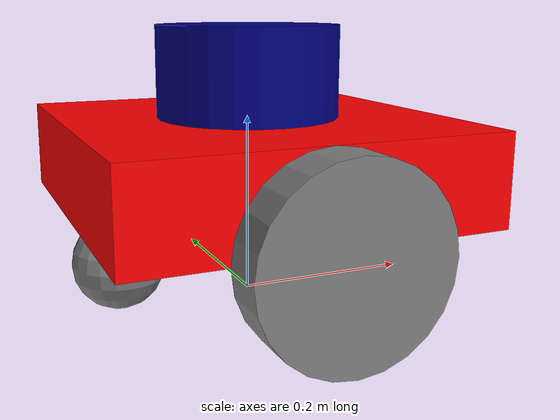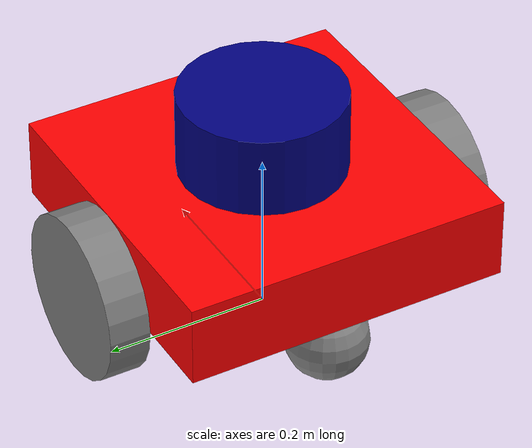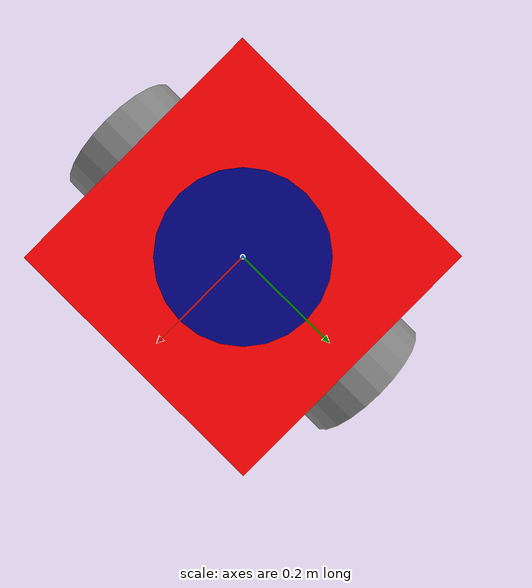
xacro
<?xml version="1.0"?>

<robot name="noisy_boy" xmlns:xacro="http://www.ros.org/wiki/xacro">

    <xacro:arg name="namespace" default=""/>

    <xacro:include filename="noisy_boy_common_properties.xacro"/>
    <xacro:include filename="noisy_boy_base.xacro"/>
    <xacro:include filename="noisy_boy_gazebo.xacro"/>
    <xacro:include filename="noisy_boy_sensors.xacro"/>

</robot>

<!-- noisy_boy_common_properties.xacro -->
<robot xmlns:xacro="http://www.ros.org/wiki/xacro">

    <material name="blue">
        <color rgba="0 0 0.5 1"/>
    </material>

    <material name="grey">
        <color rgba="0.5 0.5 0.5 1"/>
    </material>

    <material name="orange">
        <color rgba="1 0.5 0 1"/>
    </material>

    <material name="yellow">
        <color rgba="1 1 0 1"/>
    </material>

    <material name="red">
        <color rgba="1 0 0 1"/>
    </material>

    <!-- Box -->
    <xacro:macro name="box_inertia" params="m x y z o_xyz o_rpy">
        <inertial>
            <mass value="${m}"/>
            <origin xyz="${o_xyz}" rpy="${o_rpy}"/>
            <inertia ixx="${(m/12) * (y*y + z*z)}" ixy="0" ixz="0"
                     iyy="${(m/12) * (x*x + z*z)}" iyz="0"
                     izz="${(m/12) * (x*x + y*y)}"/>
        </inertial>
    </xacro:macro>

    <!-- Cylinder -->
    <xacro:macro name="cylinder_inertia" params="m r l o_xyz o_rpy">
        <inertial>
            <origin xyz="${o_xyz}" rpy="${o_rpy}"/>
            <mass value="${m}"/>
            <inertia ixx="${(m/12) * ((3 * r * r) + (l * l))}" ixy="0.0" ixz="0.0"
                     iyy="${(m/12) * ((3 * r * r) + (l * l))}" iyz="0.0"
                     izz="${(m * r * r) / 2}"/>
        </inertial>
    </xacro:macro>

    <!-- Sphere -->
    <xacro:macro name="sphere_inertia" params="m r o_xyz o_rpy">
        <inertial>
            <origin xyz="${o_xyz}" rpy="${o_rpy}"/>
            <mass value="${m}"/>
            <inertia ixx="${(2 * m * r * r) / 5}" ixy="0.0" ixz="0.0"
                     iyy="${(2 * m * r * r) / 5}" iyz="0.0"
                     izz="${(2 * m * r * r) / 5}"/>
        </inertial>
    </xacro:macro>

</robot>

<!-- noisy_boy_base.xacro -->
<robot xmlns:xacro="http://www.ros.org/wiki/xacro">

    <xacro:property name="length" value="0.4"/>
    <xacro:property name="width" value="0.4"/>
    <xacro:property name="height" value="0.1"/>

    <xacro:property name="mass" value="2.0"/>
    <xacro:property name="wheel_mass" value="0.5"/>

    <xacro:property name="wheel_radius" value="0.1"/>
    <xacro:property name="wheel_width" value="0.05"/>

    <xacro:property name="caster_wheel_radius" value="0.05"/>

    <!-- BASE -->
    <link name="base_link">
        <visual>
            <geometry>
                <box size="${length} ${width} ${height}"/>
            </geometry>
            <origin xyz="0.0 0.0 ${height/2}" rpy="0 0 0"/>
            <material name="red"/>
        </visual>

        <xacro:box_inertia m="${mass}" x="${length}" y="${width}" z="${height}" o_xyz="0 0 ${height/2}" o_rpy="0 0 0"/>

        <collision>
            <geometry>
                <box size="${length} ${width} ${height}"/>
            </geometry>
            <origin xyz="0.0 0.0 ${height/2}" rpy="0 0 0"/>
        </collision>

    </link>
    <!-- LEFT WHEEL -->
    <link name="left_wheel">
        <visual>
            <geometry>
                <cylinder radius="${wheel_radius}" length="${wheel_width}"/>
            </geometry>

            <origin xyz="0 0 0" rpy="${pi/2} 0 0"/>

            <material name="grey"/>
        </visual>

        <xacro:cylinder_inertia m="${wheel_mass}" r="${wheel_radius}" l="${wheel_width}" o_xyz="0 0 0" o_rpy="${pi/2} 0 0"/>

        <collision>
            <geometry>
                <cylinder radius="${wheel_radius}" length="${wheel_width}"/>
            </geometry>
            <origin xyz="0 0 0" rpy="${pi/2} 0 0"/>
        </collision>
    </link>

    <!-- RIGHT WHEEL -->
    <link name="right_wheel">
        <visual>
            <geometry>
                <cylinder radius="${wheel_radius}" length="${wheel_width}"/>
            </geometry>
            <origin xyz="0 0 0" rpy="${pi/2} 0 0"/>

            <material name="grey"/>
        </visual>

        <xacro:cylinder_inertia m="${wheel_mass}" r="${wheel_radius}" l="${wheel_width}" o_xyz="0 0 0" o_rpy="${pi/2} 0 0"/>

        <collision>
            <geometry>
                <cylinder radius="${wheel_radius}" length="${wheel_width}"/>
            </geometry>
            <origin xyz="0 0 0" rpy="${pi/2} 0 0"/>
        </collision>
    </link>

    <!-- FRONT CASTER -->
    <link name="front_caster_link">
        <visual>
            <geometry>
                <sphere radius="${caster_wheel_radius}"/>
            </geometry>
            <material name="grey"/>
        </visual>

        <xacro:sphere_inertia m="0.5" r="${caster_wheel_radius}" o_xyz="0 0 0" o_rpy="0 0 0"/>

        <collision>
            <geometry>
                <sphere radius="${caster_wheel_radius}"/>
            </geometry>
        </collision>
    </link>

    <!-- REAR CASTER -->
    <link name="rear_caster_link">
        <visual>
            <geometry>
                <sphere radius="${caster_wheel_radius}"/>
            </geometry>
            <material name="grey"/>
        </visual>
        <xacro:sphere_inertia m="0.5" r="${caster_wheel_radius}" o_xyz="0 0 0" o_rpy="0 0 0"/>
        <collision>
            <geometry>
                <sphere radius="${caster_wheel_radius}"/>
            </geometry>
        </collision>
    </link>

    <link name="base_footprint"/>

    <!-- BASE -->
    <joint name="base_joint" type="fixed">
        <parent link="base_footprint"/>
        <child link="base_link"/>
        <origin xyz="0 0 ${wheel_radius}" rpy="0 0 0"/>
    </joint>

    <!-- LEFT WHEEL JOINT -->
    <joint name="left_wheel_joint" type="continuous">
        <parent link="base_link"/>
        <child link="left_wheel"/>
        <origin xyz="0 ${(width/2)+(wheel_width/2)} 0" rpy="0 0 0"/>
        <axis xyz="0 1 0"/>
        <dynamics damping="0.1" friction="0.1"/>
    </joint>

    <!-- RIGHT WHEEL JOINT -->
    <joint name="right_wheel_joint" type="continuous">
        <parent link="base_link"/>
        <child link="right_wheel"/>
        <origin xyz="0 ${-((width/2)+(wheel_width/2))} 0" rpy="0 0 0"/>
        <axis xyz="0 1 0"/>
        <dynamics damping="0.1" friction="0.1"/>
    </joint>

    <!-- FRONT CASTER -->
    <joint name="front_caster_joint" type="fixed">
        <parent link="base_link"/>
        <child link="front_caster_link"/>
        <origin xyz="${(length/2)-caster_wheel_radius} 0 -${wheel_radius-caster_wheel_radius}" rpy="0 0 0"/>
    </joint>

    <!-- REAR CASTER -->
    <joint name="rear_caster_joint" type="fixed">
        <parent link="base_link"/>
        <child link="rear_caster_link"/>
        <origin xyz="-${(length/2)-caster_wheel_radius} 0 -${wheel_radius-caster_wheel_radius}" rpy="0 0 0"/>
    </joint>

</robot>

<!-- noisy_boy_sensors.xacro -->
<robot xmlns:xacro="http://www.ros.org/wiki/xacro">

    <xacro:property name="lidar_radius" value="0.1"/>
    <xacro:property name="lidar_length" value="0.1"/>

    <link name="lidar_link">
        <visual>
            <geometry>
                <cylinder radius="${lidar_radius}" length="${lidar_length}"/>
            </geometry>
            <origin xyz="0 0 0" rpy="0.0 0.0 0.0"/>
            <material name="blue"/>
        </visual>

        <collision>
            <geometry>
                <cylinder radius="${lidar_radius}" length="${lidar_length}"/>
            </geometry>
        </collision>
        <xacro:cylinder_inertia m="0.1" r="${lidar_radius}" l="${lidar_length}" o_xyz="0 0 0" o_rpy="0 0 0"/>
    </link>

    <joint name="laser_joint" type="fixed">
        <parent link="base_link"/>
        <child link="lidar_link"/>
        <origin xyz="0.0 0.0 ${height + (lidar_length/2)}" rpy="0 0 0"/>
    </joint>

    <gazebo reference="lidar_link">
        <preserveFixedJoint>true</preserveFixedJoint>
    </gazebo>

</robot>
